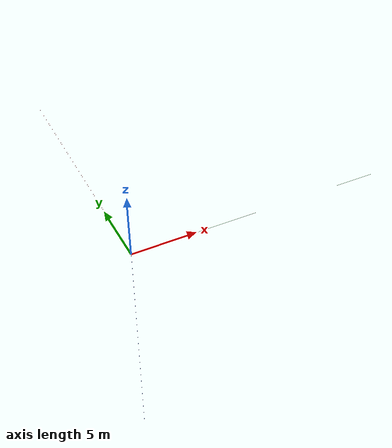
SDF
<?xml version="1.0" ?>
<sdf version="1.5">

  <world name="default">
    <!-- A global light source -->
    <light type="directional" name="sun">
        <cast_shadows>true</cast_shadows>
        <pose>0 0 2 0 0 0</pose>
        <diffuse>0.8 0.8 0.8 1</diffuse>
        <specular>0.2 0.2 0.2 1</specular>
        <attenuation>
          <range>1000</range>
          <constant>0.9</constant>
          <linear>0.01</linear>
          <quadratic>0.001</quadratic>
        </attenuation>
        <direction>-0.001 0.001 -0.9</direction>
    </light>

    <!-- Add World Coordinate Frame -->
    <scene>
     <origin_visual>false</origin_visual>
    </scene>
    <model name="world_frame">
      <static>true</static>
      <pose>0 0 0 0 0 0</pose>
      <link name="world_frame">
        <visual name='coordinate_x'>
        <pose>0 10 0 1.570796 0 0</pose>
        <geometry>
          <cylinder>
            <radius>0.0025</radius>
            <length>20</length>
          </cylinder>
        </geometry>
        <material>
          <script>
            <name>Gazebo/Red</name>
            <uri>file://media/materials/scripts/gazebo.material</uri>
          </script>
        </material>
      </visual>
      <visual name='coordinate_y'>
        <pose>10 0 0 0 1.570796 0</pose>
        <geometry>
          <cylinder>
            <radius>0.0025</radius>
            <length>20</length>
          </cylinder>
        </geometry>
        <material>
          <script>
            <name>Gazebo/Green</name>
            <uri>file://media/materials/scripts/gazebo.material</uri>
          </script>
        </material>
      </visual>
      <visual name='coordinate_z'>
        <pose>0 0 -10 0 0 0</pose>
        <geometry>
          <cylinder>
            <radius>0.0025</radius>
            <length>20</length>
          </cylinder>
        </geometry>
        <material>
          <script>
            <name>Gazebo/Blue</name>
            <uri>file://media/materials/scripts/gazebo.material</uri>
          </script>
        </material>
      </visual>
      </link>
    </model>

    <!-- Add physics -->
    <physics name='default_physics' default='0' type='ode'>
      <gravity>0 0 -9.8066</gravity>
      <ode>
        <solver>
          <type>quick</type>
          <iters>10</iters>
          <sor>1.3</sor>
          <use_dynamic_moi_rescaling>0</use_dynamic_moi_rescaling>
        </solver>
        <constraints>
          <cfm>0</cfm>
          <erp>0.2</erp>
          <contact_max_correcting_vel>100</contact_max_correcting_vel>
          <contact_surface_layer>0.001</contact_surface_layer>
        </constraints>
      </ode>
      <max_step_size>0.004</max_step_size>
      <real_time_factor>1</real_time_factor>
      <real_time_update_rate>250</real_time_update_rate>
      <magnetic_field>6.0e-6 2.3e-5 -4.2e-5</magnetic_field>
    </physics>
	<atmosphere type="adiabatic">
      <temperature>288.15</temperature>
      <pressure>101325</pressure>
      <temperature_gradient>-0.0065</temperature_gradient>
    </atmosphere>
  </world>
</sdf>
